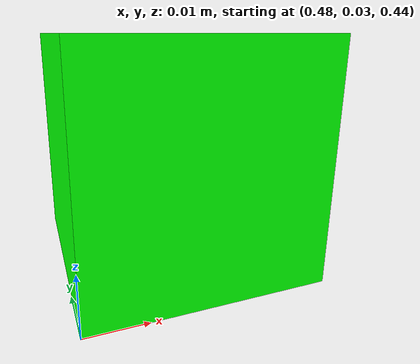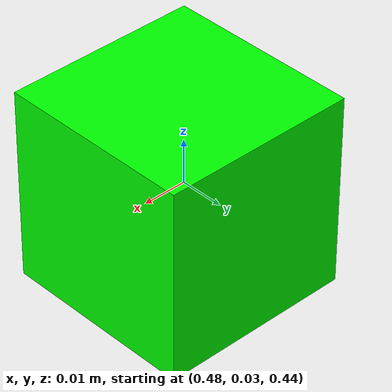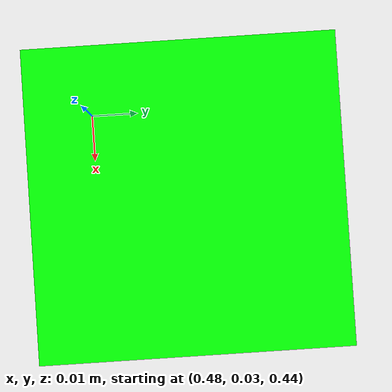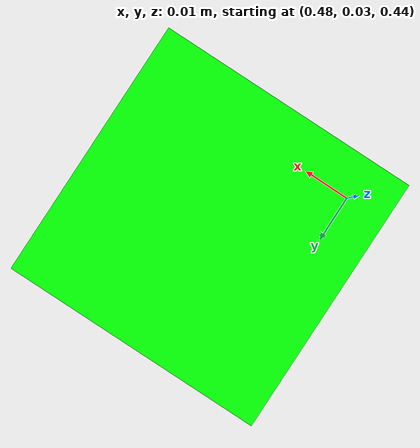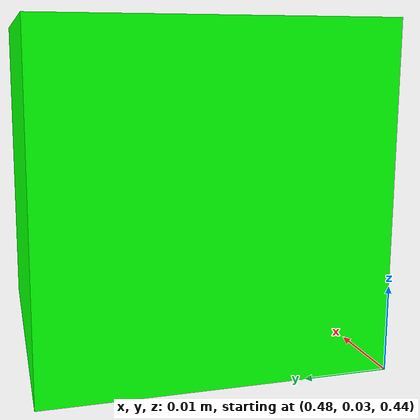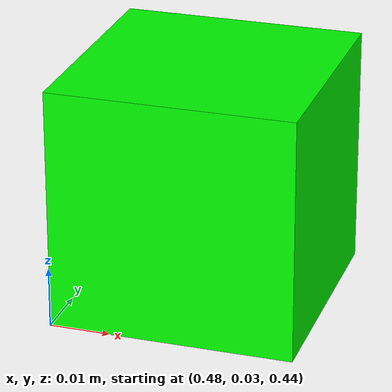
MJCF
<mujoco>
    <worldbody>
            <body name="green_block_0" pos="0.5 0.05 0.46">
            <joint name="green_block_0:joint" type="free" damping="0.1" frictionloss="0"/>
            <geom name="green_block_0" size="0.02 0.02 0.02" rgba="0 1 0 1" type="box" conaffinity="0" contype="0" group="1"/>
            <geom name="green_block_0_collision" size="0.02 0.02 0.02" type="box" conaffinity="1" contype="1" condim="4" group="4" mass="0.02" friction="1 1 1" solimp="1 1 1" solref="0.00001 1"/>
            <site name="green_block_0" pos="0 0 0" size="0.02 0.02 0.02" rgba="0 1 0 0.5" type="sphere"/>
        </body>
    </worldbody>
</mujoco>
